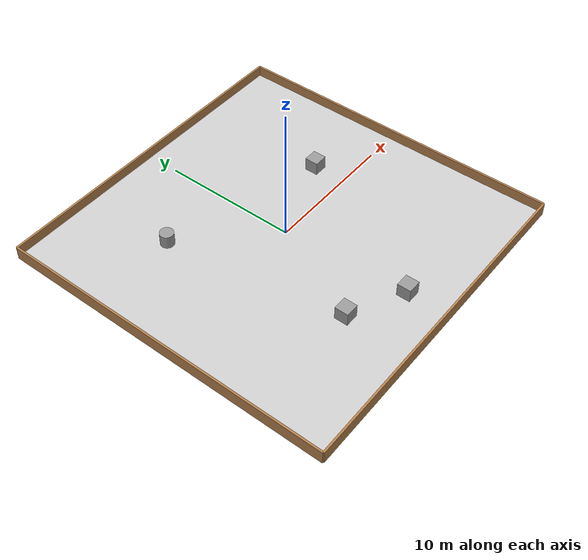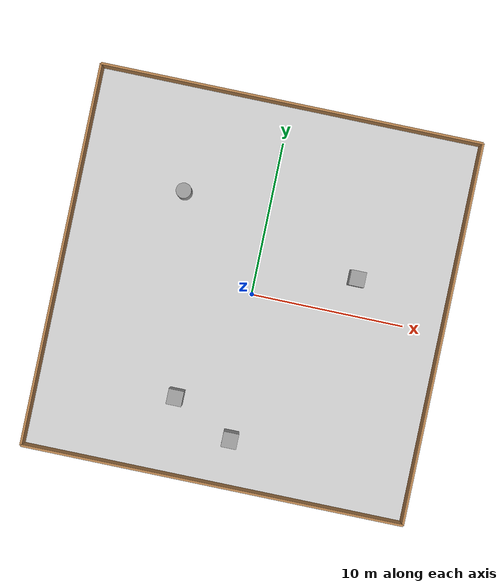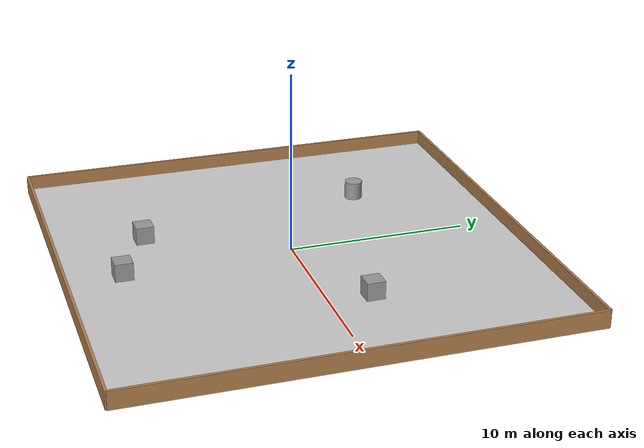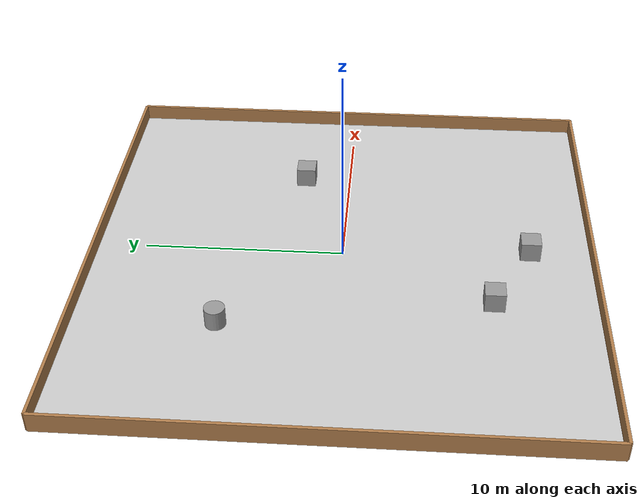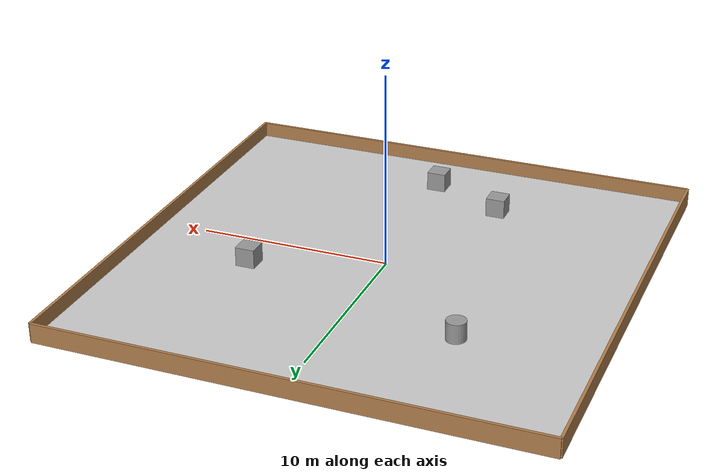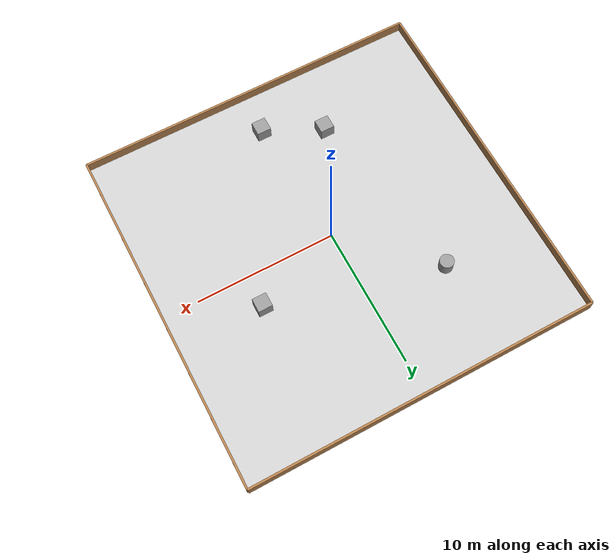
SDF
<sdf version="1.6">
 <world name="default">
  <light name="sun" type="directional">
   <pose>0 0 10 0 -0 0</pose>
   <diffuse>0.8 0.8 0.8 1</diffuse>
   <specular>0.2 0.2 0.2 1</specular>
   <attenuation>
    <range>1000</range>
    <constant>0.9</constant>
    <linear>0.01</linear>
    <quadratic>0.001</quadratic>
   </attenuation>
   <direction>-0.5 0.1 -0.9</direction>
  </light>
  <model name="grounds">
   <static>1</static>
   <link name="dirt">
    <collision name="collision">
     <geometry><plane><normal>0 0 1</normal><size>25 25</size></plane></geometry>
     <surface><friction><ode><mu>inf</mu><mu2>inf</mu2></ode></friction></surface>
    </collision>
    <visual name="visual">
     <cast_shadows>0</cast_shadows>
     <geometry><plane><normal>0 0 1</normal><size>25 25</size></plane></geometry>
     <material>
      <script>
       <uri>model://grounds/materials/scripts</uri>
       <uri>model://grounds/materials/textures</uri>
       <name>grounds/dirt</name>
      </script>
     </material>
    </visual>
   </link>
  </model>
  <model name="enclosure">
   <link name="Wall_0">
    <pose>0 12.5 0 0 -0 0</pose>
    <inertial>
     <mass>1</mass>
     <inertia><ixx>1</ixx><ixy>0</ixy><ixz>0</ixz><iyy>1</iyy><iyz>0</iyz><izz>1</izz></inertia>
    </inertial>
    <visual name="Wall_0_Visual">
     <pose>0 0 0.25 0 -0 0</pose>
     <geometry><box><size>25 0.15 1</size></box></geometry>
     <material>
      <script><uri>file://media/materials/scripts/gazebo.material</uri><name>Gazebo/Wood</name></script>
      <ambient>1 1 1 1</ambient>
      <shader type="pixel"><normal_map>__default__</normal_map></shader>
      <diffuse>1 1 1 1</diffuse>
      <specular>0.2 0.2 0.2 1</specular>
      <emissive>0 0 0 1</emissive>
     </material>
     <meta><layer>0</layer></meta>
    </visual>
    <collision name="Wall_0_Collision">
     <pose>0 0 0.25 0 -0 0</pose>
     <geometry><box><size>25 0.15 1</size></box></geometry>
     <surface>
      <friction>
       <ode><mu>1</mu><mu2>1</mu2><fdir1>0 0 0</fdir1><slip1>0</slip1><slip2>0</slip2></ode>
       <torsional>
        <coefficient>1</coefficient>
        <patch_radius>0</patch_radius>
        <surface_radius>0</surface_radius>
        <use_patch_radius>1</use_patch_radius>
        <ode><slip>0</slip></ode>
       </torsional>
      </friction>
      <bounce><restitution_coefficient>0</restitution_coefficient><threshold>1e+06</threshold></bounce>
      <contact>
       <collide_without_contact>0</collide_without_contact>
       <collide_without_contact_bitmask>1</collide_without_contact_bitmask>
       <collide_bitmask>1</collide_bitmask>
       <ode>
        <soft_cfm>0</soft_cfm>
        <soft_erp>0.2</soft_erp>
        <kp>1e+13</kp>
        <kd>1</kd>
        <max_vel>0.01</max_vel>
        <min_depth>0</min_depth>
       </ode>
       <bullet>
        <split_impulse>1</split_impulse>
        <split_impulse_penetration_threshold>-0.01</split_impulse_penetration_threshold>
        <soft_cfm>0</soft_cfm>
        <soft_erp>0.2</soft_erp>
        <kp>1e+13</kp>
        <kd>1</kd>
       </bullet>
      </contact>
     </surface>
    </collision>
   </link>
   <link name="Wall_1">
    <pose>0 -12.5 0 0 -0 0</pose>
    <inertial>
     <mass>1</mass>
     <inertia><ixx>1</ixx><ixy>0</ixy><ixz>0</ixz><iyy>1</iyy><iyz>0</iyz><izz>1</izz></inertia>
    </inertial>
    <visual name="Wall_1_Visual">
     <pose>0 0 0.25 0 -0 0</pose>
     <geometry><box><size>25 0.15 1</size></box></geometry>
     <material>
      <script><uri>file://media/materials/scripts/gazebo.material</uri><name>Gazebo/Wood</name></script>
      <ambient>1 1 1 1</ambient>
      <shader type="pixel"><normal_map>__default__</normal_map></shader>
      <diffuse>1 1 1 1</diffuse>
      <specular>0.2 0.2 0.2 1</specular>
      <emissive>0 0 0 1</emissive>
     </material>
     <meta><layer>0</layer></meta>
    </visual>
    <collision name="Wall_1_Collision">
     <pose>0 0 0.25 0 -0 0</pose>
     <geometry><box><size>25 0.15 1</size></box></geometry>
     <surface>
      <friction>
       <ode><mu>1</mu><mu2>1</mu2><fdir1>0 0 0</fdir1><slip1>0</slip1><slip2>0</slip2></ode>
       <torsional>
        <coefficient>1</coefficient>
        <patch_radius>0</patch_radius>
        <surface_radius>0</surface_radius>
        <use_patch_radius>1</use_patch_radius>
        <ode><slip>0</slip></ode>
       </torsional>
      </friction>
      <bounce><restitution_coefficient>0</restitution_coefficient><threshold>1e+06</threshold></bounce>
      <contact>
       <collide_without_contact>0</collide_without_contact>
       <collide_without_contact_bitmask>1</collide_without_contact_bitmask>
       <collide_bitmask>1</collide_bitmask>
       <ode>
        <soft_cfm>0</soft_cfm>
        <soft_erp>0.2</soft_erp>
        <kp>1e+13</kp>
        <kd>1</kd>
        <max_vel>0.01</max_vel>
        <min_depth>0</min_depth>
       </ode>
       <bullet>
        <split_impulse>1</split_impulse>
        <split_impulse_penetration_threshold>-0.01</split_impulse_penetration_threshold>
        <soft_cfm>0</soft_cfm>
        <soft_erp>0.2</soft_erp>
        <kp>1e+13</kp>
        <kd>1</kd>
       </bullet>
      </contact>
     </surface>
    </collision>
   </link>
   <link name="Wall_2">
    <pose>-12.5 0 0 0 -0 1.57</pose>
    <inertial>
     <mass>1</mass>
     <inertia><ixx>1</ixx><ixy>0</ixy><ixz>0</ixz><iyy>1</iyy><iyz>0</iyz><izz>1</izz></inertia>
    </inertial>
    <visual name="Wall_2_Visual">
     <pose>0 0 0.25 0 -0 0</pose>
     <geometry><box><size>25 0.15 1</size></box></geometry>
     <material>
      <script><uri>file://media/materials/scripts/gazebo.material</uri><name>Gazebo/Wood</name></script>
      <ambient>1 1 1 1</ambient>
      <shader type="pixel"><normal_map>__default__</normal_map></shader>
      <diffuse>1 1 1 1</diffuse>
      <specular>0.2 0.2 0.2 1</specular>
      <emissive>0 0 0 1</emissive>
     </material>
     <meta><layer>0</layer></meta>
    </visual>
    <collision name="Wall_2_Collision">
     <pose>0 0 0.25 0 -0 0</pose>
     <geometry><box><size>25 0.15 1</size></box></geometry>
     <surface>
      <friction>
       <ode><mu>1</mu><mu2>1</mu2><fdir1>0 0 0</fdir1><slip1>0</slip1><slip2>0</slip2></ode>
       <torsional>
        <coefficient>1</coefficient>
        <patch_radius>0</patch_radius>
        <surface_radius>0</surface_radius>
        <use_patch_radius>1</use_patch_radius>
        <ode><slip>0</slip></ode>
       </torsional>
      </friction>
      <bounce><restitution_coefficient>0</restitution_coefficient><threshold>1e+06</threshold></bounce>
      <contact>
       <collide_without_contact>0</collide_without_contact>
       <collide_without_contact_bitmask>1</collide_without_contact_bitmask>
       <collide_bitmask>1</collide_bitmask>
       <ode>
        <soft_cfm>0</soft_cfm>
        <soft_erp>0.2</soft_erp>
        <kp>1e+13</kp>
        <kd>1</kd>
        <max_vel>0.01</max_vel>
        <min_depth>0</min_depth>
       </ode>
       <bullet>
        <split_impulse>1</split_impulse>
        <split_impulse_penetration_threshold>-0.01</split_impulse_penetration_threshold>
        <soft_cfm>0</soft_cfm>
        <soft_erp>0.2</soft_erp>
        <kp>1e+13</kp>
        <kd>1</kd>
       </bullet>
      </contact>
     </surface>
    </collision>
   </link>
   <link name="Wall_3">
    <pose>12.5 0 0 0 -0 1.57</pose>
    <inertial>
     <mass>1</mass>
     <inertia><ixx>1</ixx><ixy>0</ixy><ixz>0</ixz><iyy>1</iyy><iyz>0</iyz><izz>1</izz></inertia>
    </inertial>
    <visual name="Wall_3_Visual">
     <pose>0 0 0.25 0 -0 0</pose>
     <geometry><box><size>25 0.15 1</size></box></geometry>
     <material>
      <script><uri>file://media/materials/scripts/gazebo.material</uri><name>Gazebo/Wood</name></script>
      <ambient>1 1 1 1</ambient>
      <shader type="pixel"><normal_map>__default__</normal_map></shader>
      <diffuse>1 1 1 1</diffuse>
      <specular>0.2 0.2 0.2 1</specular>
      <emissive>0 0 0 1</emissive>
     </material>
     <meta><layer>0</layer></meta>
    </visual>
    <collision name="Wall_3_Collision">
     <pose>0 0 0.25 0 -0 0</pose>
     <geometry><box><size>25 0.15 1</size></box></geometry>
     <surface>
      <friction>
       <ode><mu>1</mu><mu2>1</mu2><fdir1>0 0 0</fdir1><slip1>0</slip1><slip2>0</slip2></ode>
       <torsional>
        <coefficient>1</coefficient>
        <patch_radius>0</patch_radius>
        <surface_radius>0</surface_radius>
        <use_patch_radius>1</use_patch_radius>
        <ode><slip>0</slip></ode>
       </torsional>
      </friction>
      <bounce><restitution_coefficient>0</restitution_coefficient><threshold>1e+06</threshold></bounce>
      <contact>
       <collide_without_contact>0</collide_without_contact>
       <collide_without_contact_bitmask>1</collide_without_contact_bitmask>
       <collide_bitmask>1</collide_bitmask>
       <ode>
        <soft_cfm>0</soft_cfm>
        <soft_erp>0.2</soft_erp>
        <kp>1e+13</kp>
        <kd>1</kd>
        <max_vel>0.01</max_vel>
        <min_depth>0</min_depth>
       </ode>
       <bullet>
        <split_impulse>1</split_impulse>
        <split_impulse_penetration_threshold>-0.01</split_impulse_penetration_threshold>
        <soft_cfm>0</soft_cfm>
        <soft_erp>0.2</soft_erp>
        <kp>1e+13</kp>
        <kd>1</kd>
       </bullet>
      </contact>
     </surface>
    </collision>
   </link>
   <static>1</static>
  </model>
  <physics name="default_physics" default="0" type="ode">
   <real_time_update_rate>200</real_time_update_rate>
   <real_time_factor>1</real_time_factor>
   <max_step_size>0.005</max_step_size>
  </physics>
  <gravity>0 0 -9.8</gravity>
  <magnetic_field>6e-06 2.3e-05 -4.2e-05</magnetic_field>
  <atmosphere type="adiabatic"/>
  <scene><ambient>0.4 0.4 0.4 1</ambient><background>0.7 0.7 0.7 1</background><shadows>1</shadows></scene>
  <spherical_coordinates>
   <surface_model>EARTH_WGS84</surface_model>
   <latitude_deg>0</latitude_deg>
   <longitude_deg>0</longitude_deg>
   <elevation>0</elevation>
   <heading_deg>0</heading_deg>
  </spherical_coordinates>
  <model name="unit_cylinder">
   <pose>-5.61899 5.58195 0.499805 -0 -0 -0</pose>
   <link name="link">
    <inertial>
     <mass>1</mass>
     <inertia><ixx>0.145833</ixx><ixy>0</ixy><ixz>0</ixz><iyy>0.145833</iyy><iyz>0</iyz><izz>0.125</izz></inertia>
    </inertial>
    <collision name="collision">
     <geometry><cylinder><radius>0.5</radius><length>1</length></cylinder></geometry>
    </collision>
    <visual name="visual">
     <geometry><cylinder><radius>0.5</radius><length>1</length></cylinder></geometry>
     <material>
      <script><name>Gazebo/Grey</name><uri>file://media/materials/scripts/gazebo.material</uri></script>
     </material>
    </visual>
   </link>
  </model>
  <model name="unit_box">
   <pose>6.38224 2.37126 0.5 0 -0 0</pose>
   <link name="link">
    <inertial>
     <mass>1</mass>
     <inertia>
      <ixx>0.166667</ixx>
      <ixy>0</ixy>
      <ixz>0</ixz>
      <iyy>0.166667</iyy>
      <iyz>0</iyz>
      <izz>0.166667</izz>
     </inertia>
    </inertial>
    <collision name="collision"><geometry><box><size>1 1 1</size></box></geometry></collision>
    <visual name="visual">
     <geometry><box><size>1 1 1</size></box></geometry>
     <material>
      <script><name>Gazebo/Grey</name><uri>file://media/materials/scripts/gazebo.material</uri></script>
     </material>
    </visual>
   </link>
  </model>
  <model name="unit_box_0">
   <pose>-3.44856 -7.43921 0.499902 -0.000196 0 0</pose>
   <link name="link">
    <inertial>
     <mass>1</mass>
     <inertia>
      <ixx>0.166667</ixx>
      <ixy>0</ixy>
      <ixz>0</ixz>
      <iyy>0.166667</iyy>
      <iyz>0</iyz>
      <izz>0.166667</izz>
     </inertia>
    </inertial>
    <collision name="collision"><geometry><box><size>1 1 1</size></box></geometry></collision>
    <visual name="visual">
     <geometry><box><size>1 1 1</size></box></geometry>
     <material>
      <script><name>Gazebo/Grey</name><uri>file://media/materials/scripts/gazebo.material</uri></script>
     </material>
    </visual>
   </link>
  </model>
  <model name="unit_box_1">
   <pose>0.532574 -9.38513 0.5 0 -0 0</pose>
   <link name="link">
    <inertial>
     <mass>1</mass>
     <inertia>
      <ixx>0.166667</ixx>
      <ixy>0</ixy>
      <ixz>0</ixz>
      <iyy>0.166667</iyy>
      <iyz>0</iyz>
      <izz>0.166667</izz>
     </inertia>
    </inertial>
    <collision name="collision"><geometry><box><size>1 1 1</size></box></geometry></collision>
    <visual name="visual">
     <geometry><box><size>1 1 1</size></box></geometry>
     <material>
      <script><name>Gazebo/Grey</name><uri>file://media/materials/scripts/gazebo.material</uri></script>
     </material>
    </visual>
   </link>
  </model>
 </world>
</sdf>
